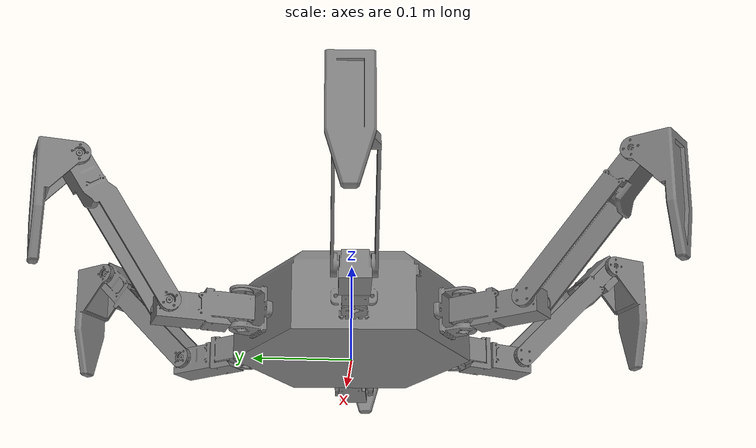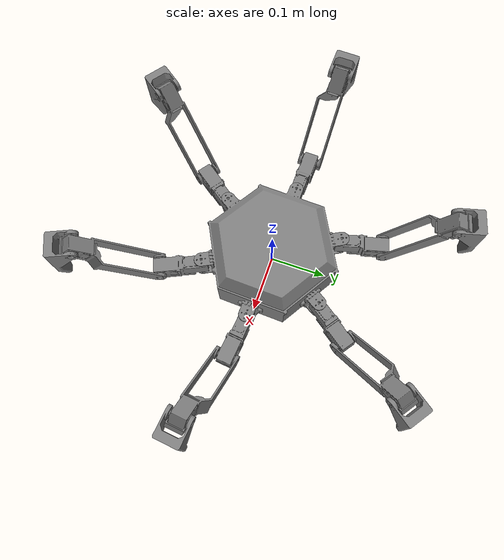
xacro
<?xml version="1.0"?>
<robot xmlns:xacro="http://ros.org/wiki/xacro" name="hexapod">

  <xacro:property name="base_mass" value="1.0"/>
  <xacro:property name="link_mass" value="0.2"/>
  <xacro:property name="link_inertia" value="0.001"/>

  <material name="Grey">
    <color rgba="0.5 0.5 0.5 1"/>
  </material>

  <link name="base_link">
    <inertial>
      <mass value="${base_mass}"/>
      <origin xyz="-2.16623615156841E-08 -1.86474001004355E-07 0.0398545694412631" rpy="0 0 0"/>
      <inertia ixx="0.00140041843016966" ixy="-2.31249740438415E-06" ixz="2.39569958983405E-10"
               iyy="0.00139816601300651" iyz="-5.86573676030292E-09"
               izz="0.00260764605126391"/>
    </inertial>
    <visual>
      <origin xyz="0 0 0" rpy="0 0 0"/>
      <geometry>
        <mesh
          filename="package://hexapod_description/meshes/base_link.STL" />
      </geometry>
      <material name="Grey"/>
    </visual>
    <collision>
      <origin xyz="0 0 0" rpy="0 0 0"/>
      <geometry>
        <mesh
          filename="package://hexapod_description/meshes/base_link.STL" />
      </geometry>
    </collision>
  </link>

  <xacro:macro name="leg" params="prefix xA yA zA xB yB zB xC yC zC
                                        axisAx axisBx axisCx
                                        axisAy axisBy axisCy
                                        axisAz axisBz axisCz
                                        stlA_path stlB_path stlC_path
                                        lowerA lowerB lowerC
                                        upperA upperB upperC
                                        "
                                        >

    <link name="${prefix}_linkA">
      <inertial>
        <mass value="${link_mass}"/>
        <origin xyz="0 0 0" rpy="0 0 0"/>
        <inertia ixx="${link_inertia}" ixy="0.0" ixz="0.0"
                 iyy="${link_inertia}" iyz="0.0"
                 izz="${link_inertia}"/>
      </inertial>
      <visual>
        <origin xyz="0 0 0" rpy="0 0 0"/>
      <geometry>
        <mesh
          filename="${stlA_path}" />
      </geometry>
        <material name="Grey"/>
      </visual>
      <collision>
        <origin xyz="0 0 0" rpy="0 0 0"/>
      <geometry>
        <mesh
          filename="${stlA_path}" />
      </geometry>
      </collision>
    </link>

    <joint name="${prefix}_jointA" type="revolute">
      <origin xyz="${xA} ${yA} ${zA}" rpy="0 0 -0.54114"/>
      <parent link="base_link"/>
      <child link="${prefix}_linkA"/>
      <axis xyz="${axisAx} ${axisAy} ${axisAz}"/>
      <limit effort="1.0" lower="${lowerA}" upper="${upperA}" velocity="1.0"/>
    </joint>

    <link name="${prefix}_linkB">
      <inertial>
        <mass value="${link_mass}"/>
        <origin xyz="0 0 0" rpy="0 0 0"/>
        <inertia ixx="${link_inertia}" ixy="0.0" ixz="0.0"
                 iyy="${link_inertia}" iyz="0.0"
                 izz="${link_inertia}"/>
      </inertial>
      <visual>
        <origin xyz="0 0 0" rpy="0 0 0"/>
      <geometry>
        <mesh
          filename="${stlB_path}" />
      </geometry>
        <material name="Grey"/>
      </visual>
      <collision>
        <origin xyz="0 0 0" rpy="0 0 0"/>
      <geometry>
        <mesh
          filename="${stlB_path}" />
      </geometry>
      </collision>
    </link>

    <joint name="${prefix}_jointB" type="revolute">
      <origin xyz="${xB} ${yB} ${zB}" rpy="0 0 0"/>
      <parent link="${prefix}_linkA"/>
      <child link="${prefix}_linkB"/>
      <axis xyz="${axisBx} ${axisBy} ${axisBz}"/>
      <limit effort="1.0" lower="${lowerB}" upper="${upperB}" velocity="1.0"/>
    </joint>

    <link name="${prefix}_linkC">
      <inertial>
        <mass value="${link_mass}"/>
        <origin xyz="0 0 0" rpy="0 0 0"/>
        <inertia ixx="${link_inertia}" ixy="0.0" ixz="0.0"
                 iyy="${link_inertia}" iyz="0.0"
                 izz="${link_inertia}"/>
      </inertial>
      <visual>
        <origin xyz="0 0 0" rpy="0 0 0"/>
      <geometry>
        <mesh
          filename="${stlC_path}" />
      </geometry>
        <material name="Grey"/>
      </visual>
      <collision>
        <origin xyz="0 0 0" rpy="0 0 0"/>
      <geometry>
        <mesh
          filename="${stlC_path}" />
      </geometry>
      </collision>
    </link>

    <joint name="${prefix}_jointC" type="revolute">
      <origin xyz="${xC} ${yC} ${zC}" rpy="0 0 0"/>
      <parent link="${prefix}_linkB"/>
      <child link="${prefix}_linkC"/>
      <axis xyz="${axisCx} ${axisCy} ${axisCz}"/>
      <limit effort="1.0" lower="${lowerC}" upper="${upperC}" velocity="1.0"/>
    </joint>
  </xacro:macro>

  <xacro:leg prefix="leg1" xA="-0.066747"                  yA="-0.10678"                zA="0.03165"
                           xB="-0.00760490724250368"       yB="-0.0751266443986717"     zB="-0.00269900311088156"
                           xC="-0.016997"                  yC="-0.12029"                zC="0.12064"
                           axisAx="0"                      axisAy="0"                   axisAz="1"
                           axisBx="-0.996338495646665"     axisBy="0.0854962109391992"  axisBz="0"
                           axisCx="-0.99634"               axisCy="0.085496"            axisCz="0"
                           lowerA="-1.5708"                lowerB="-2.96706"            lowerC="-0.872665"
                           upperA="1.5708"                 upperB="1.74533"             upperC="2.96706"
                           stlA_path="package://hexapod_description/meshes/1A_link.STL"
                           stlB_path="package://hexapod_description/meshes/1B_link.STL"
                           stlC_path="package://hexapod_description/meshes/1C_link.STL"
  />
  <xacro:leg prefix="leg2" xA="-0.12585"                   yA="0.0044155"               zA="0.03165"
                           xB="-0.0665963742689142"        yB="-0.0355912800079509"     zB="-0.00269872535340721"
                           xC="-0.10904"                   yC="-0.052825"               zC="0.121"
                           axisAx="0"                      axisAy="0"                   axisAz="1"
                           axisBx="-0.484736668052907"     axisBy="0.874660141213748"   axisBz="0"
                           axisCx="-0.4847"                axisCy="0.87466"             axisCz="0"
                           lowerA="-1.5708"                lowerB="-2.96706"            lowerC="-0.872665"
                           upperA="1.5708"                 upperB="1.74533"             upperC="2.96706"
                           stlA_path="package://hexapod_description/meshes/2A_link.STL"
                           stlB_path="package://hexapod_description/meshes/2B_link.STL"
                           stlC_path="package://hexapod_description/meshes/2C_link.STL"
  />
  <xacro:leg prefix="leg3" xA="-0.059099"                  yA="0.11119"                 zA="0.03165"
                           xB="-0.0533873782981206"        yB="0.0533996389354673"      zB="-0.00269846185166944"
                           xC="-0.062549"                  yC="0.069952"                zC="0.14324"
                           axisAx="0"                      axisAy="0"                   axisAz="1"
                           axisBx="0.696443909967172"      axisBy="0.717611231983724"   axisBz="0"
                           axisCx="0.69644"                axisCy="0.71761"             axisCz="0"
                           lowerA="-1.5708"                lowerB="-2.96706"            lowerC="-0.872665"
                           upperA="1.5708"                 upperB="1.74533"             upperC="2.96706"
                           stlA_path="package://hexapod_description/meshes/3A_link.STL"
                           stlB_path="package://hexapod_description/meshes/3B_link.STL"
                           stlC_path="package://hexapod_description/meshes/3C_link.STL"
  />
  <xacro:leg prefix="leg4" xA="0.066747"                   yA="0.10678"                 zA="0.03165"
                           xB="0.00755197903724675"        yB="0.0751319969361967"      zB="-0.00269854049076024"
                           xC="0.016913"                   yC="0.12032"                 zC="0.12066"
                           axisAx="0"                      axisAy="0"                   axisAz="1"
                           axisBx="0.996395716648548"      axisBy="-0.084826740105107"  axisBz="0"
                           axisCx="0.9964"                 axisCy="-0.084827"           axisCz="0"
                           lowerA="-1.5708"                lowerB="-2.96706"           lowerC="-0.872665"
                           upperA="1.5708"                 upperB="1.74533"             upperC="2.96706"
                           stlA_path="package://hexapod_description/meshes/4A_link.STL"
                           stlB_path="package://hexapod_description/meshes/4B_link.STL"
                           stlC_path="package://hexapod_description/meshes/4C_link.STL"
  />
  <xacro:leg prefix="leg5" xA="0.12585"                    yA="-0.0044158"              zA="0.03165"
                           xB="0.0688275229088763"         yB="0.0310583245155329"      zB="-0.00269883901400592"
                           xC="0.11251"                    yC="0.045505"                zC="0.1208"
                           axisAx="0"                      axisAy="0"                   axisAz="1"
                           axisBx="0.425192570892761"      axisBy="-0.905102909972711"  axisBz="0"
                           axisCx="0.42519"                axisCy="-0.9051"             axisCz="0"
                           lowerA="-1.5708"                lowerB="-2.96706"            lowerC="-0.87"
                           upperA="1.5708"                 upperB="1.74533"             upperC="2.96706"
                           stlA_path="package://hexapod_description/meshes/5A_link.STL"
                           stlB_path="package://hexapod_description/meshes/5B_link.STL"
                           stlC_path="package://hexapod_description/meshes/5C_link.STL"
  />
  <xacro:leg prefix="leg6" xA="0.0590987552322091"         yA="-0.111193"                zA="0.03165"
                           xB="0.0612532738303673"         yB="-0.0441574849800916"      zB="-0.0026990706223573"
                           xC="0.095967"                   yC="-0.075088"                zC="0.1203"
                           axisAx="0"                      axisAy="0"                    axisAz="1"
                           axisBx="-0.572319986773635"     axisBy="-0.820030385252709"   axisBz="0"
                           axisCx="-0.57232"               axisCy="-0.82003"             axisCz="0"
                           lowerA="-1.5708"                lowerB="-2.96706"             lowerC="-0.87"
                           upperA="1.5708"                 upperB="1.74533"              upperC="2.96706"
                           stlA_path="package://hexapod_description/meshes/6A_link.STL"
                           stlB_path="package://hexapod_description/meshes/6B_link.STL"
                           stlC_path="package://hexapod_description/meshes/6C_link.STL"
  />

</robot>
